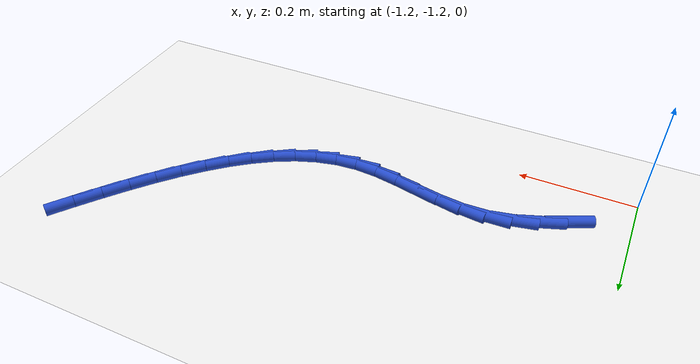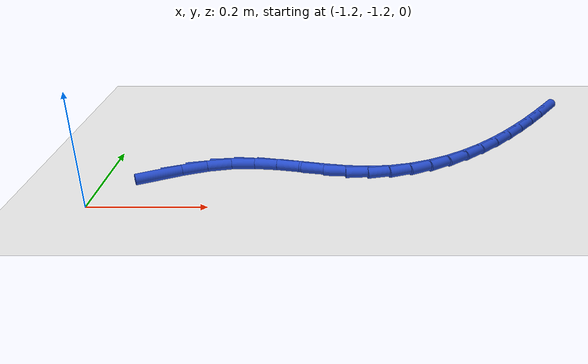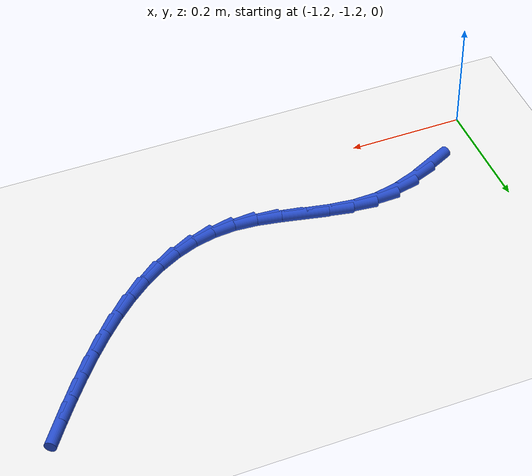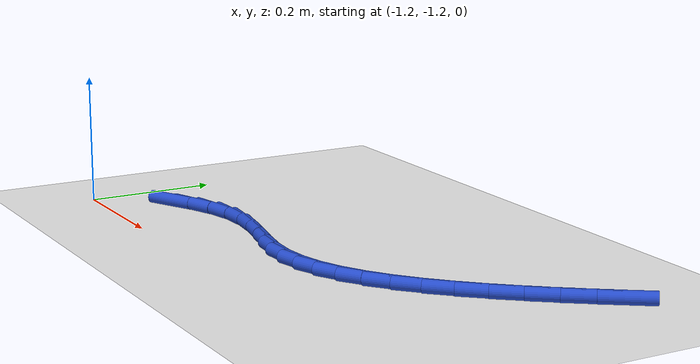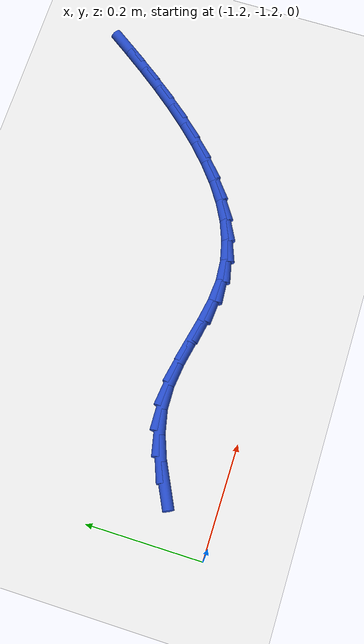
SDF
<sdf version="1.6">
 <world name="default">
  <model name="ground_plane">
   <static>1</static>
   <link name="link">
    <collision name="collision">
     <geometry><plane><normal>0 0 1</normal><size>100 100</size></plane></geometry>
     <surface><friction><ode><mu>100</mu><mu2>50</mu2></ode></friction></surface>
    </collision>
    <visual name="visual">
     <cast_shadows>0</cast_shadows>
     <geometry><plane><normal>0 0 1</normal><size>100 100</size></plane></geometry>
     <material>
      <script><uri>file://media/materials/scripts/gazebo.material</uri><name>Gazebo/WhiteGlow</name></script>
     </material>
    </visual>
   </link>
  </model>
  <model name="line">
   <link name="link_128">
    <pose>-1.1042574901034385 -1.105553805728254 0.01 0 1.57 0.45333835319443255</pose>
    <collision name="collision">
     <geometry><cylinder><radius>0.01</radius><length>0.08</length></cylinder></geometry>
    </collision>
    <visual name="visual">
     <material>
      <script><name>Gazebo/Blue</name><uri>file://media/materials/scripts/gazebo.material</uri></script>
     </material>
     <geometry><cylinder><radius>0.01</radius><length>0.08</length></cylinder></geometry>
    </visual>
   </link>
   <link name="link_129">
    <pose>-1.0638912131905374 -1.085888200757312 0.01 0 1.57 0.3572756917290533</pose>
    <collision name="collision">
     <geometry><cylinder><radius>0.01</radius><length>0.08</length></cylinder></geometry>
    </collision>
    <visual name="visual">
     <material>
      <script><name>Gazebo/Blue</name><uri>file://media/materials/scripts/gazebo.material</uri></script>
     </material>
     <geometry><cylinder><radius>0.01</radius><length>0.08</length></cylinder></geometry>
    </visual>
   </link>
   <link name="link_130">
    <pose>-1.0228890772175925 -1.0705822778927923 0.01 0 1.57 0.2108185826353363</pose>
    <collision name="collision">
     <geometry><cylinder><radius>0.01</radius><length>0.08</length></cylinder></geometry>
    </collision>
    <visual name="visual">
     <material>
      <script><name>Gazebo/Blue</name><uri>file://media/materials/scripts/gazebo.material</uri></script>
     </material>
     <geometry><cylinder><radius>0.01</radius><length>0.08</length></cylinder></geometry>
    </visual>
   </link>
   <link name="link_131">
    <pose>-0.9814280533290717 -1.061709686589721 0.01 0 1.57 0.027189061311129626</pose>
    <collision name="collision">
     <geometry><cylinder><radius>0.01</radius><length>0.08</length></cylinder></geometry>
    </collision>
    <visual name="visual">
     <material>
      <script><name>Gazebo/Blue</name><uri>file://media/materials/scripts/gazebo.material</uri></script>
     </material>
     <geometry><cylinder><radius>0.01</radius><length>0.08</length></cylinder></geometry>
    </visual>
   </link>
   <link name="link_132">
    <pose>-0.9397002277970391 -1.060574866532463 0.01 0 1.57 -0.11460622209679946</pose>
    <collision name="collision">
     <geometry><cylinder><radius>0.01</radius><length>0.08</length></cylinder></geometry>
    </collision>
    <visual name="visual">
     <material>
      <script><name>Gazebo/Blue</name><uri>file://media/materials/scripts/gazebo.material</uri></script>
     </material>
     <geometry><cylinder><radius>0.01</radius><length>0.08</length></cylinder></geometry>
    </visual>
   </link>
   <link name="link_133">
    <pose>-0.8979586514746715 -1.065379766132076 0.01 0 1.57 -0.19431338526111197</pose>
    <collision name="collision">
     <geometry><cylinder><radius>0.01</radius><length>0.08</length></cylinder></geometry>
    </collision>
    <visual name="visual">
     <material>
      <script><name>Gazebo/Blue</name><uri>file://media/materials/scripts/gazebo.material</uri></script>
     </material>
     <geometry><cylinder><radius>0.01</radius><length>0.08</length></cylinder></geometry>
    </visual>
   </link>
   <link name="link_134">
    <pose>-0.8564717434269621 -1.0735442445574286 0.01 0 1.57 -0.21496349521948951</pose>
    <collision name="collision">
     <geometry><cylinder><radius>0.01</radius><length>0.08</length></cylinder></geometry>
    </collision>
    <visual name="visual">
     <material>
      <script><name>Gazebo/Blue</name><uri>file://media/materials/scripts/gazebo.material</uri></script>
     </material>
     <geometry><cylinder><radius>0.01</radius><length>0.08</length></cylinder></geometry>
    </visual>
   </link>
   <link name="link_135">
    <pose>-0.8155079227192268 -1.0824881609609471 0.01 0 1.57 -0.17597506682775788</pose>
    <collision name="collision">
     <geometry><cylinder><radius>0.01</radius><length>0.08</length></cylinder></geometry>
    </collision>
    <visual name="visual">
     <material>
      <script><name>Gazebo/Blue</name><uri>file://media/materials/scripts/gazebo.material</uri></script>
     </material>
     <geometry><cylinder><radius>0.01</radius><length>0.08</length></cylinder></geometry>
    </visual>
   </link>
   <link name="link_136">
    <pose>-0.7753356084167807 -1.0896313744950585 0.01 0 1.57 -0.07095046005743172</pose>
    <collision name="collision">
     <geometry><cylinder><radius>0.01</radius><length>0.08</length></cylinder></geometry>
    </collision>
    <visual name="visual">
     <material>
      <script><name>Gazebo/Blue</name><uri>file://media/materials/scripts/gazebo.material</uri></script>
     </material>
     <geometry><cylinder><radius>0.01</radius><length>0.08</length></cylinder></geometry>
    </visual>
   </link>
   <link name="link_137">
    <pose>-0.7362213801195937 -1.0924112130930097 0.01 0 1.57 0.07986777048084781</pose>
    <collision name="collision">
     <geometry><cylinder><radius>0.01</radius><length>0.08</length></cylinder></geometry>
    </collision>
    <visual name="visual">
     <material>
      <script><name>Gazebo/Blue</name><uri>file://media/materials/scripts/gazebo.material</uri></script>
     </material>
     <geometry><cylinder><radius>0.01</radius><length>0.08</length></cylinder></geometry>
    </visual>
   </link>
   <link name="link_138">
    <pose>-0.6983146991755881 -1.089377237151274 0.01 0 1.57 0.22832343197090826</pose>
    <collision name="collision">
     <geometry><cylinder><radius>0.01</radius><length>0.08</length></cylinder></geometry>
    </collision>
    <visual name="visual">
     <material>
      <script><name>Gazebo/Blue</name><uri>file://media/materials/scripts/gazebo.material</uri></script>
     </material>
     <geometry><cylinder><radius>0.01</radius><length>0.08</length></cylinder></geometry>
    </visual>
   </link>
   <link name="link_139">
    <pose>-0.6615795019961573 -1.0808408746962062 0.01 0 1.57 0.36405650573075277</pose>
    <collision name="collision">
     <geometry><cylinder><radius>0.01</radius><length>0.08</length></cylinder></geometry>
    </collision>
    <visual name="visual">
     <material>
      <script><name>Gazebo/Blue</name><uri>file://media/materials/scripts/gazebo.material</uri></script>
     </material>
     <geometry><cylinder><radius>0.01</radius><length>0.08</length></cylinder></geometry>
    </visual>
   </link>
   <link name="link_140">
    <pose>-0.6259632900333197 -1.067269631009669 0.01 0 1.57 0.4834473159735874</pose>
    <collision name="collision">
     <geometry><cylinder><radius>0.01</radius><length>0.08</length></cylinder></geometry>
    </collision>
    <visual name="visual">
     <material>
      <script><name>Gazebo/Blue</name><uri>file://media/materials/scripts/gazebo.material</uri></script>
     </material>
     <geometry><cylinder><radius>0.01</radius><length>0.08</length></cylinder></geometry>
    </visual>
   </link>
   <link name="link_141">
    <pose>-0.5914135647390933 -1.0491310113735244 0.01 0 1.57 0.5855488371116309</pose>
    <collision name="collision">
     <geometry><cylinder><radius>0.01</radius><length>0.08</length></cylinder></geometry>
    </collision>
    <visual name="visual">
     <material>
      <script><name>Gazebo/Blue</name><uri>file://media/materials/scripts/gazebo.material</uri></script>
     </material>
     <geometry><cylinder><radius>0.01</radius><length>0.08</length></cylinder></geometry>
    </visual>
   </link>
   <link name="link_142">
    <pose>-0.557877827565496 -1.0268925210696347 0.01 0 1.57 0.6712016460989839</pose>
    <collision name="collision">
     <geometry><cylinder><radius>0.01</radius><length>0.08</length></cylinder></geometry>
    </collision>
    <visual name="visual">
     <material>
      <script><name>Gazebo/Blue</name><uri>file://media/materials/scripts/gazebo.material</uri></script>
     </material>
     <geometry><cylinder><radius>0.01</radius><length>0.08</length></cylinder></geometry>
    </visual>
   </link>
   <link name="link_143">
    <pose>-0.5253035799645467 -1.0010216653798625 0.01 0 1.57 0.7421056480374925</pose>
    <collision name="collision">
     <geometry><cylinder><radius>0.01</radius><length>0.08</length></cylinder></geometry>
    </collision>
    <visual name="visual">
     <material>
      <script><name>Gazebo/Blue</name><uri>file://media/materials/scripts/gazebo.material</uri></script>
     </material>
     <geometry><cylinder><radius>0.01</radius><length>0.08</length></cylinder></geometry>
    </visual>
   </link>
   <link name="link_144">
    <pose>-0.49363832338826347 -0.9719859495860704 0.01 0 1.57 0.8001760993813359</pose>
    <collision name="collision">
     <geometry><cylinder><radius>0.01</radius><length>0.08</length></cylinder></geometry>
    </collision>
    <visual name="visual">
     <material>
      <script><name>Gazebo/Blue</name><uri>file://media/materials/scripts/gazebo.material</uri></script>
     </material>
     <geometry><cylinder><radius>0.01</radius><length>0.08</length></cylinder></geometry>
    </visual>
   </link>
   <link name="link_145">
    <pose>-0.4628295592886644 -0.9402528789701207 0.01 0 1.57 0.847196703851161</pose>
    <collision name="collision">
     <geometry><cylinder><radius>0.01</radius><length>0.08</length></cylinder></geometry>
    </collision>
    <visual name="visual">
     <material>
      <script><name>Gazebo/Blue</name><uri>file://media/materials/scripts/gazebo.material</uri></script>
     </material>
     <geometry><cylinder><radius>0.01</radius><length>0.08</length></cylinder></geometry>
    </visual>
   </link>
   <link name="link_146">
    <pose>-0.43282478911776756 -0.9062899588138756 0.01 0 1.57 0.8846726977366982</pose>
    <collision name="collision">
     <geometry><cylinder><radius>0.01</radius><length>0.08</length></cylinder></geometry>
    </collision>
    <visual name="visual">
     <material>
      <script><name>Gazebo/Blue</name><uri>file://media/materials/scripts/gazebo.material</uri></script>
     </material>
     <geometry><cylinder><radius>0.01</radius><length>0.08</length></cylinder></geometry>
    </visual>
   </link>
   <link name="link_147">
    <pose>-0.40357151432759086 -0.8705646943991969 0.01 0 1.57 0.9137906150589369</pose>
    <collision name="collision">
     <geometry><cylinder><radius>0.01</radius><length>0.08</length></cylinder></geometry>
    </collision>
    <visual name="visual">
     <material>
      <script><name>Gazebo/Blue</name><uri>file://media/materials/scripts/gazebo.material</uri></script>
     </material>
     <geometry><cylinder><radius>0.01</radius><length>0.08</length></cylinder></geometry>
    </visual>
   </link>
   <link name="link_148">
    <pose>-0.3750172363701534 -0.8335445910079482 0.01 0 1.57 0.9354238615173337</pose>
    <collision name="collision">
     <geometry><cylinder><radius>0.01</radius><length>0.08</length></cylinder></geometry>
    </collision>
    <visual name="visual">
     <material>
      <script><name>Gazebo/Blue</name><uri>file://media/materials/scripts/gazebo.material</uri></script>
     </material>
     <geometry><cylinder><radius>0.01</radius><length>0.08</length></cylinder></geometry>
    </visual>
   </link>
   <link name="link_149">
    <pose>-0.3471094566974729 -0.7956971539219914 0.01 0 1.57 0.9501504937382014</pose>
    <collision name="collision">
     <geometry><cylinder><radius>0.01</radius><length>0.08</length></cylinder></geometry>
    </collision>
    <visual name="visual">
     <material>
      <script><name>Gazebo/Blue</name><uri>file://media/materials/scripts/gazebo.material</uri></script>
     </material>
     <geometry><cylinder><radius>0.01</radius><length>0.08</length></cylinder></geometry>
    </visual>
   </link>
  </model>
 </world>
</sdf>
